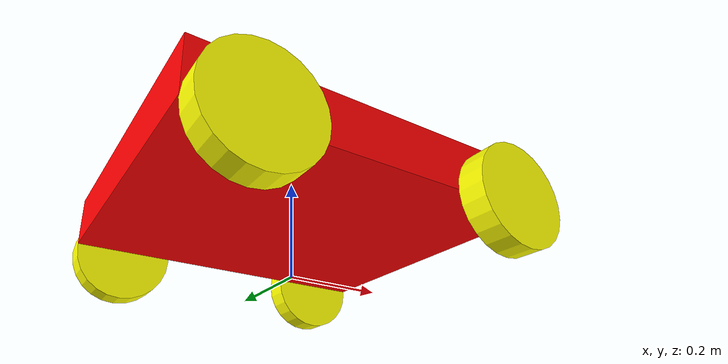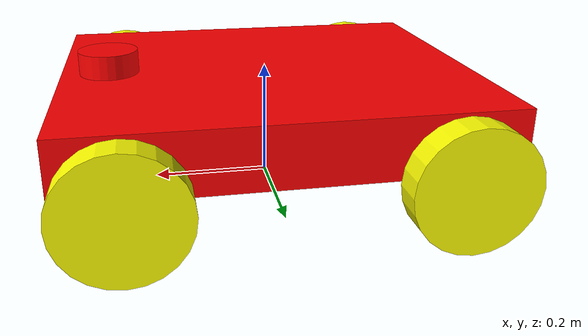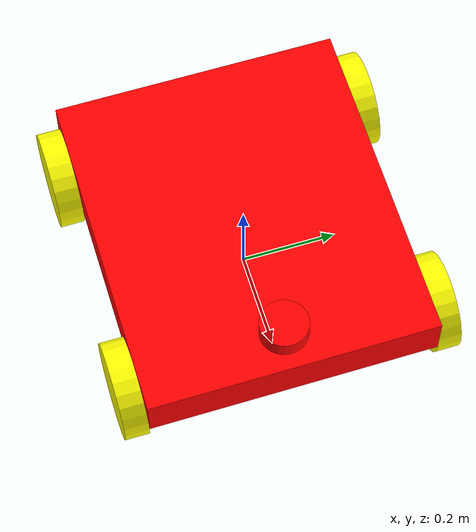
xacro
<?xml version="1.0"?>
<robot xmlns:xacro="http://www.ros.org/wiki/xacro" name="ford_robot">

    <xacro:include filename="$(find ford_bot)/description/robot_core.xacro"/>
    <xacro:include filename="$(find ford_bot)/description/lidar.xacro"/>

</robot>

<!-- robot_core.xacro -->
<robot xmlns:xacro="http://www.ros.org/wiki/xacro" name="ford_robot">

    <xacro:include filename="inertial_macros.xacro"/>

    <xacro:include filename="gazebo_params.xacro"/>

    <material name="white">
        <color rgba="1 1 1 1" />
    </material>

    <material name="orange">
        <color rgba="1 0.3 0.1 1"/>
    </material>

    <material name="blue">
        <color rgba="0.2 0.2 1 1"/>
    </material>

    <material name="black">
        <color rgba="0 0 0 1"/>
    </material>

    <material name="red">
        <color rgba="1 0 0 1"/>
    </material>

    <!-- BASE LINK -->

    <link name="base_link">
    </link>

    <!-- BASE FOOTRPRINT LINK-->

    <joint name="base_footprint_joint" type="fixed">
        <parent link="base_link"/>
        <child link="base_footprint_link"/>
        <origin xyz="0.0 0.0 0.0"/>
    </joint>

    <link name="base_footprint_link">
    </link>

    <!-- CHASSIS LINK -->

    <joint name="chassis_joint" type="fixed">
        <parent link="base_link"/>
        <child link="chassis"/>
        <origin xyz="0.0 0.0 0.15"/>
    </joint>

    <link name="chassis">
        <visual>
            <origin xyz="0.0 0.0 0.0"/>
            <geometry>
                <box size="0.7 0.6 0.1"/>
            </geometry>
            <material name="red"/>
        </visual>
        <collision>
            <origin xyz="0.0 0.0 0.0"/>
            <geometry>
                <box size="0.7 0.6 0.1"/>
            </geometry>
        </collision>
        <xacro:inertial_box mass="5" x="0.7" y="0.6" z="0.1">
                <origin xyz="0.0 0.0 0.0" rpy="0.0 0.0 0.0"/>
        </xacro:inertial_box>
    </link>

       <!-- All Wheel links and joints -->
    <xacro:macro name="wheel" params="name x y z">
        <joint name="${name}_wheel_joint" type="continuous">
            <origin xyz="${x} ${y} ${z}" rpy="-${pi/2} 0.0 0.0"/>
            <parent link="chassis"/>
            <child link="${name}_wheel"/>
            <limit effort="1000.0" velocity="5.0"/>
            <axis xyz="0.0 0.0 1"/>
        </joint>

        <link name="${name}_wheel">
            <visual name="">
                <origin xyz="0.0 0.0 0.0" rpy="0.0 0.0 0.0"/>
                <geometry>
                    <cylinder radius="0.1" length="0.05"/>
                </geometry>
                <material name="white">
                    <color rgba="1.0 1.0 0.0 1.0"/>
                </material>
            </visual>
            <collision>
                <origin xyz="0.0 0.0 0.0" rpy="0.0 0.0 0.0"/>
                <geometry>
                    <cylinder radius="0.1" length="0.05"/>
                </geometry>
            </collision>
            <xacro:inertial_cylinder mass="0.75" length="0.05" radius="0.1">
                <origin xyz="0.0 0.0 0.0" rpy="0.0 0.0 0.0"/>
            </xacro:inertial_cylinder>
        </link>
    </xacro:macro>

    <!-- Wheel Creating using macros -->
    <xacro:wheel name="front_left"  x="0.250" y ="0.325" z="-0.055"/>
    <xacro:wheel name="rear_left" x="-0.250" y ="0.325" z="-0.055"/>
    <xacro:wheel name="front_right"  x="0.250" y ="-0.325" z="-0.055"/>
    <xacro:wheel name="rear_right"   x="-0.250" y ="-0.325" z="-0.055"/>

</robot>

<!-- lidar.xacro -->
<robot xmlns:xacro="http://www.ros.org/wiki/xacro">

    <joint name="laser_joint" type="fixed">

        <parent link="chassis"/>
        <child link="laser_frame"/>
        <origin xyz="0.27 0 0.07" rpy="0 0 0"/>

    </joint>

    <link name="laser_frame">
            <visual name="">
                <origin xyz="0.0 0.0 0.0" rpy="0.0 0.0 0.0"/>
                <geometry>
                    <cylinder radius="0.05" length="0.04"/>
                </geometry>
                <material name="red"/>
            </visual>
            <collision>
                <origin xyz="0.0 0.0 0.0" rpy="0.0 0.0 0.0"/>
                <geometry>
                    <cylinder radius="0.05" length="0.04"/>
                </geometry>
            </collision>
            <xacro:inertial_cylinder mass="0.5" length="0.04" radius="0.05">
                <origin xyz="0.0 0.0 0.0" rpy="0.0 0.0 0.0"/>
            </xacro:inertial_cylinder>
        </link>

        <gazebo reference="laser_frame">
            <material>Gazebo/FlatBlack</material>
            <sensor type="ray" name="lidar_sensor">
            <pose>0 0 0 0 0 0</pose>
            <visualize>true</visualize>
            <update_rate>5</update_rate>
            <ray>
                <scan>
                    <horizontal>
                        <samples>360</samples>
                        <resolution>1</resolution>
                        <min_angle>0.0</min_angle>
                        <max_angle>6.28319</max_angle>
                    </horizontal>
                </scan>
                <range>
                    <min>0.120</min>
                    <max>3.5</max>
                    <resolution>0.015</resolution>
                </range>
                <noise>
                    <type>gaussian</type>
                    <mean>0.0</mean>
                    <stddev>0.01</stddev>
                </noise>
            </ray>
            <plugin name="gazebo_ros_lidar_controller" filename="libgazebo_ros_laser.so">
                <topicName>scan</topicName>
                <frameName>laser_frame</frameName>
            </plugin>
            </sensor>
        </gazebo>
</robot>
